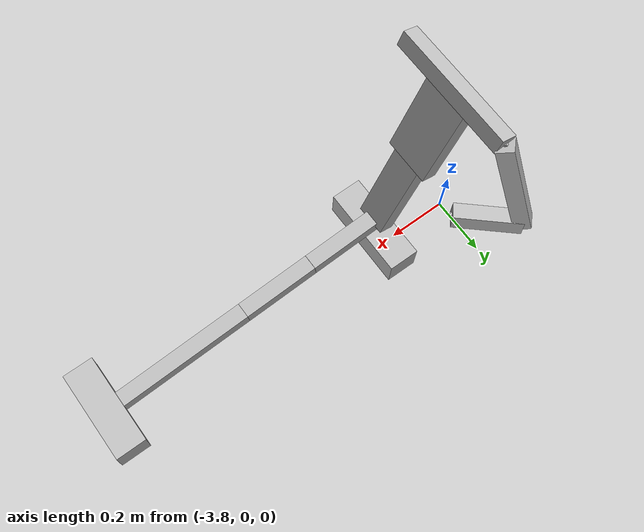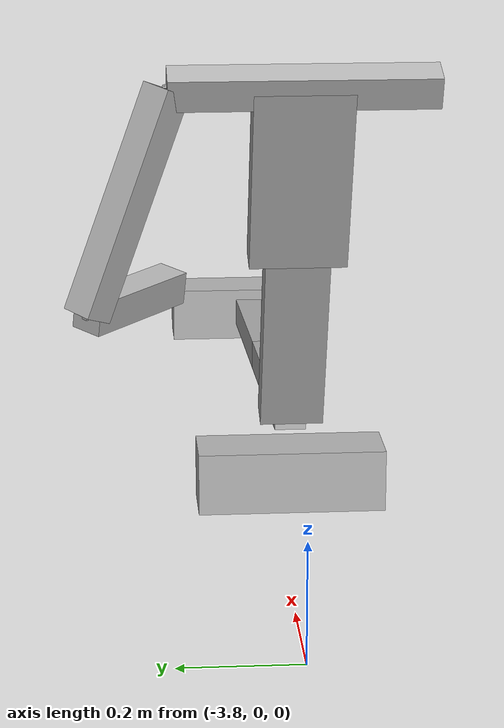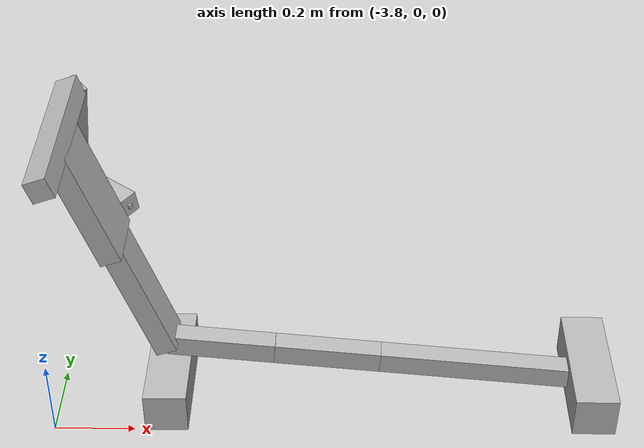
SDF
<sdf version='1.6'>
  <model name='myboat'>
    <link name='footplate'>
      <pose frame=''>-2.5 0 0.2 0 -0 0</pose>
      <inertial>
        <pose frame=''>0 0 0 0 -0 0</pose>
        <mass>0.1</mass>
        <inertia>
          <ixx>0.0008</ixx>
          <ixy>0</ixy>
          <ixz>0</ixz>
          <iyy>0.000166</iyy>
          <iyz>0</iyz>
          <izz>0.0008</izz>
        </inertia>
      </inertial>
      <collision name='footplate_collision'>
        <pose frame=''>0 0 0 0 -0 0</pose>
        <geometry>
          <box>
            <size>0.1 0.3 0.1</size>
          </box>
        </geometry>
      </collision>
      <visual name='footplate_visual'>
        <pose frame=''>0 0 0 0 -0 0</pose>
        <geometry>
          <box>
            <size>0.1 0.3 0.1</size>
          </box>
        </geometry>
      </visual>
    </link>
    <joint name='sk_fp' type='fixed'>
      <child>footplate</child>
      <parent>world</parent>
    </joint>
    <link name='lowerleg'>
      <pose frame=''>-2.5 0 0.2 0 0.100168 0</pose>
      <inertial>
        <pose frame=''>-0.25 0 0 0 -0 0</pose>
        <mass>1</mass>
        <inertia>
          <ixx>0.001</ixx>
          <ixy>0</ixy>
          <ixz>0</ixz>
          <iyy>0.0005</iyy>
          <iyz>0</iyz>
          <izz>0.001</izz>
        </inertia>
      </inertial>
      <collision name='lowerleg_collision'>
        <pose frame=''>-0.25 0 0 0 -0 0</pose>
        <geometry>
          <box>
            <size>0.5 0.05 0.05</size>
          </box>
        </geometry>
      </collision>
      <visual name='lowerleg_visual'>
        <pose frame=''>-0.25 0 0 0 -0 0</pose>
        <geometry>
          <box>
            <size>0.5 0.05 0.05</size>
          </box>
        </geometry>
      </visual>
    </link>
    <joint name='fp_ll' type='revolute'>
      <child>lowerleg</child>
      <parent>footplate</parent>
      <axis>
        <xyz>0 1 0</xyz>
        <limit>
          <lower>0</lower>
          <upper>1.5708</upper>
          <effort>1000</effort>
          <velocity>1</velocity>
        </limit>
        <dynamics>
          <damping>0.005</damping>
          <friction>0</friction>
          <spring_reference>0</spring_reference>
          <spring_stiffness>0</spring_stiffness>
        </dynamics>
        <use_parent_model_frame>1</use_parent_model_frame>
      </axis>
    </joint>
    <link name='upperleg_1'>
      <pose frame=''>-2.99749 0 0.25 0 0.100168 0</pose>
      <inertial>
        <pose frame=''>-0.125 0 0 0 -0 0</pose>
        <mass>1</mass>
        <inertia>
          <ixx>0.001</ixx>
          <ixy>0</ixy>
          <ixz>0</ixz>
          <iyy>0.0005</iyy>
          <iyz>0</iyz>
          <izz>0.001</izz>
        </inertia>
      </inertial>
      <collision name='upperleg_1_collision'>
        <pose frame=''>-0.125 0 0 0 -0 0</pose>
        <geometry>
          <box>
            <size>0.25 0.05 0.05</size>
          </box>
        </geometry>
      </collision>
      <visual name='upperleg_1_visual'>
        <pose frame=''>-0.125 0 0 0 -0 0</pose>
        <geometry>
          <box>
            <size>0.25 0.05 0.05</size>
          </box>
        </geometry>
      </visual>
    </link>
    <joint name='knee' type='revolute'>
      <child>upperleg_1</child>
      <parent>lowerleg</parent>
      <axis>
        <xyz>0 1 0</xyz>
        <limit>
          <lower>-3.1</lower>
          <upper>0</upper>
          <effort>100</effort>
          <velocity>1</velocity>
        </limit>
        <dynamics>
          <damping>0.005</damping>
          <friction>0</friction>
          <spring_reference>0</spring_reference>
          <spring_stiffness>0</spring_stiffness>
        </dynamics>
        <use_parent_model_frame>1</use_parent_model_frame>
      </axis>
    </joint>
    <link name='seat'>
      <pose frame=''>-3.49514 0 0.2 0 -0 0</pose>
      <inertial>
        <pose frame=''>0 0 0 0 -0 0</pose>
        <mass>0.1</mass>
        <inertia>
          <ixx>0.001</ixx>
          <ixy>0</ixy>
          <ixz>0</ixz>
          <iyy>0.0005</iyy>
          <iyz>0</iyz>
          <izz>0.001</izz>
        </inertia>
      </inertial>
      <collision name='seat_collision'>
        <pose frame=''>0 0 0 0 -0 0</pose>
        <geometry>
          <box>
            <size>0.1 0.3 0.1</size>
          </box>
        </geometry>
      </collision>
      <visual name='seat_visual'>
        <pose frame=''>0 0 0 0 -0 0</pose>
        <geometry>
          <box>
            <size>0.1 0.3 0.1</size>
          </box>
        </geometry>
      </visual>
    </link>
    <joint name='sliding' type='prismatic'>
      <child>seat</child>
      <parent>world</parent>
      <axis>
        <xyz>1 0 0</xyz>
        <limit>
          <lower>-0.1</lower>
          <upper>0.8</upper>
          <effort>1000</effort>
          <velocity>0.5</velocity>
        </limit>
        <dynamics>
          <damping>0.005</damping>
          <friction>0</friction>
          <spring_reference>0</spring_reference>
          <spring_stiffness>0</spring_stiffness>
        </dynamics>
        <use_parent_model_frame>1</use_parent_model_frame>
      </axis>
    </joint>
    <link name='upperleg_2'>
      <pose frame=''>-3.49514 0 0.3 0 0.100168 0</pose>
      <inertial>
        <pose frame=''>0.125 0 0 0 -0 0</pose>
        <mass>1</mass>
        <inertia>
          <ixx>0.001</ixx>
          <ixy>0</ixy>
          <ixz>0</ixz>
          <iyy>0.0005</iyy>
          <iyz>0</iyz>
          <izz>0.001</izz>
        </inertia>
      </inertial>
      <collision name='upperleg_2_collision'>
        <pose frame=''>0.125 0 0 0 -0 0</pose>
        <geometry>
          <box>
            <size>0.25 0.05 0.05</size>
          </box>
        </geometry>
      </collision>
      <visual name='upperleg_2_visual'>
        <pose frame=''>0.125 0 0 0 -0 0</pose>
        <geometry>
          <box>
            <size>0.25 0.05 0.05</size>
          </box>
        </geometry>
      </visual>
    </link>
    <joint name='hip1' type='revolute'>
      <child>upperleg_2</child>
      <parent>seat</parent>
      <axis>
        <xyz>0 1 0</xyz>
        <limit>
          <lower>-1.6</lower>
          <upper>0</upper>
          <effort>100</effort>
          <velocity>1</velocity>
        </limit>
        <dynamics>
          <damping>0.005</damping>
          <friction>0</friction>
          <spring_reference>0</spring_reference>
          <spring_stiffness>0</spring_stiffness>
        </dynamics>
        <use_parent_model_frame>1</use_parent_model_frame>
      </axis>
    </joint>
    <link name='back_low'>
      <pose frame=''>-3.49514 0 0.3 3.14159 -1.2308 3.14159</pose>
      <inertial>
        <pose frame=''>0.15 0 0 0 -0 0</pose>
        <mass>10</mass>
        <inertia>
          <ixx>0.01</ixx>
          <ixy>0</ixy>
          <ixz>0</ixz>
          <iyy>0.077</iyy>
          <iyz>0</iyz>
          <izz>0.083</izz>
        </inertia>
      </inertial>
      <collision name='back_low_collision'>
        <pose frame=''>0.15 0 0 0 -0 0</pose>
        <geometry>
          <box>
            <size>0.3 0.1 0.05</size>
          </box>
        </geometry>
      </collision>
      <visual name='back_low_visual'>
        <pose frame=''>0.15 0 0 0 -0 0</pose>
        <geometry>
          <box>
            <size>0.3 0.1 0.05</size>
          </box>
        </geometry>
      </visual>
    </link>
    <joint name='hip2' type='revolute'>
      <child>back_low</child>
      <parent>seat</parent>
      <axis>
        <xyz>0 1 0</xyz>
        <limit>
          <lower>-1</lower>
          <upper>1</upper>
          <effort>100</effort>
          <velocity>1</velocity>
        </limit>
        <dynamics>
          <damping>0.005</damping>
          <friction>0</friction>
          <spring_reference>0</spring_reference>
          <spring_stiffness>0</spring_stiffness>
        </dynamics>
        <use_parent_model_frame>1</use_parent_model_frame>
      </axis>
    </joint>
    <link name='back_high'>
      <pose frame=''>-3.59519 0 0.582826 3.14159 -1.2308 3.14159</pose>
      <inertial>
        <pose frame=''>0.163636 0 0 0 -0 0</pose>
        <mass>11</mass>
        <inertia>
          <ixx>0.033</ixx>
          <ixy>0</ixy>
          <ixz>0</ixz>
          <iyy>0.0978545</iyy>
          <iyz>0</iyz>
          <izz>0.127455</izz>
        </inertia>
      </inertial>
      <collision name='back_high_collision'>
        <pose frame=''>0.15 0 0 0 -0 0</pose>
        <geometry>
          <box>
            <size>0.3 0.15 0.05</size>
          </box>
        </geometry>
      </collision>
      <visual name='back_high_visual'>
        <pose frame=''>0.15 0 0 0 -0 0</pose>
        <geometry>
          <box>
            <size>0.3 0.15 0.05</size>
          </box>
        </geometry>
      </visual>
      <visual name='back_high_fixed_joint_lump__shoulder_link_visual_1'>
        <pose frame=''>0.3 0 0 0 -0 0</pose>
        <geometry>
          <box>
            <size>0.05 0.4 0.05</size>
          </box>
        </geometry>
      </visual>
    </link>
    <joint name='back_lh' type='revolute'>
      <child>back_high</child>
      <parent>back_low</parent>
      <axis>
        <xyz>0 1 0</xyz>
        <limit>
          <lower>0</lower>
          <upper>0.5</upper>
          <effort>100</effort>
          <velocity>1</velocity>
        </limit>
        <dynamics>
          <damping>0.005</damping>
          <friction>0</friction>
          <spring_reference>0</spring_reference>
          <spring_stiffness>0</spring_stiffness>
        </dynamics>
        <use_parent_model_frame>1</use_parent_model_frame>
      </axis>
    </joint>
    <link name='left_shoulder_xx_link'>
      <pose frame=''>-3.69523 0.2 0.865653 -2.79032 -1.20769 2.76797</pose>
      <inertial>
        <pose frame=''>0 0 0 0 -0 0</pose>
        <mass>0.02</mass>
        <inertia>
          <ixx>3.34e-07</ixx>
          <ixy>0</ixy>
          <ixz>0</ixz>
          <iyy>3.34e-07</iyy>
          <iyz>0</iyz>
          <izz>3.34e-07</izz>
        </inertia>
      </inertial>
      <visual name='left_shoulder_xx_link_visual'>
        <pose frame=''>0 0 0 0 -0 0</pose>
        <geometry>
          <box>
            <size>0.01 0.01 0.01</size>
          </box>
        </geometry>
      </visual>
      <visual name='left_shoulder_xx_link_fixed_joint_lump__left_shoulder_psi_link_visual_1'>
        <pose frame=''>0 0 0 -0.803 0 0</pose>
        <geometry>
          <box>
            <size>0.01 0.01 0.01</size>
          </box>
        </geometry>
      </visual>
    </link>
    <joint name='shoulder_l' type='revolute'>
      <child>left_shoulder_xx_link</child>
      <parent>back_high</parent>
      <axis>
        <xyz>-0.942755 0 -0.333487</xyz>
        <limit>
          <lower>-1.5</lower>
          <upper>0.5</upper>
          <effort>100</effort>
          <velocity>1</velocity>
        </limit>
        <dynamics>
          <damping>0.005</damping>
          <friction>0</friction>
          <spring_reference>0</spring_reference>
          <spring_stiffness>0</spring_stiffness>
        </dynamics>
        <use_parent_model_frame>1</use_parent_model_frame>
      </axis>
    </joint>
    <link name='arm_l_upper'>
      <pose frame=''>-3.69523 0.2 0.865653 0.42859 -1.18849 -1.20039</pose>
      <inertial>
        <pose frame=''>-0.245218 0.004538 -0.046902 0 -0 0</pose>
        <mass>2.02</mass>
        <inertia>
          <ixx>0.0116713</ixx>
          <ixy>0.000524506</ixy>
          <ixz>-0.00542045</ixz>
          <iyy>0.0277945</iyy>
          <iyz>0.00069704</iyz>
          <izz>0.0206585</izz>
        </inertia>
      </inertial>
      <visual name='arm_l_upper_visual'>
        <pose frame=''>-0.175 0 0 0 -0 0</pose>
        <geometry>
          <box>
            <size>0.35 0.05 0.05</size>
          </box>
        </geometry>
      </visual>
      <visual name='arm_l_upper_fixed_joint_lump__left_elbow_psi_link_visual_1'>
        <pose frame=''>-0.35 0 0 3.14159 -1.20159 3.14159</pose>
        <geometry>
          <box>
            <size>0.01 0.01 0.01</size>
          </box>
        </geometry>
      </visual>
      <visual name='arm_l_upper_fixed_joint_lump__arm_l_lower_1_visual_2'>
        <pose frame=''>-0.314059 0.008988 -0.092884 2.91336 -1.19127 -2.89655</pose>
        <geometry>
          <box>
            <size>0.2 0.05 0.05</size>
          </box>
        </geometry>
      </visual>
      <visual name='arm_l_upper_fixed_joint_lump__dummy_link_1_visual_3'>
        <pose frame=''>-0.278118 0.017976 -0.185768 2.91336 -1.19127 -2.89655</pose>
        <geometry>
          <box>
            <size>0.01 0.01 0.01</size>
          </box>
        </geometry>
      </visual>
    </link>
    <joint name='LShoulderTheta' type='revolute'>
      <child>arm_l_upper</child>
      <parent>left_shoulder_xx_link</parent>
      <axis>
        <xyz>0.708285 0.688691 0.155042</xyz>
        <limit>
          <lower>-2</lower>
          <upper>1</upper>
          <effort>100</effort>
          <velocity>1</velocity>
        </limit>
        <dynamics>
          <damping>0.005</damping>
          <friction>0</friction>
          <spring_reference>0</spring_reference>
          <spring_stiffness>0</spring_stiffness>
        </dynamics>
        <use_parent_model_frame>1</use_parent_model_frame>
      </axis>
    </joint>
    <self_collide>1</self_collide>
    <static>0</static>
    <joint name='lower12' type='fixed'>
      <pose frame=''>0.25 0 0 0 -0 0</pose>
      <parent>upperleg_1</parent>
      <child>upperleg_2</child>
    </joint>
  </model>
</sdf>
